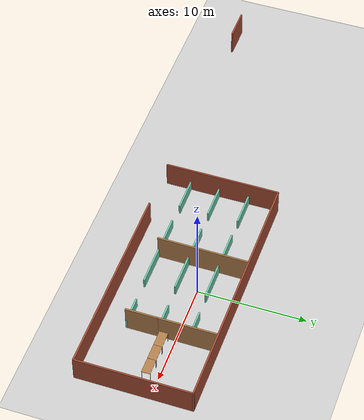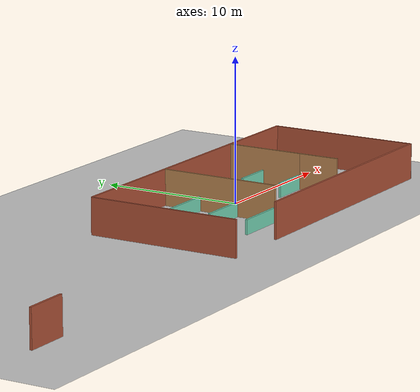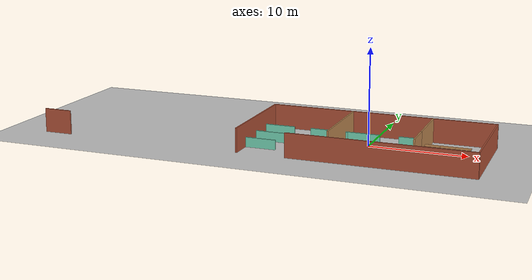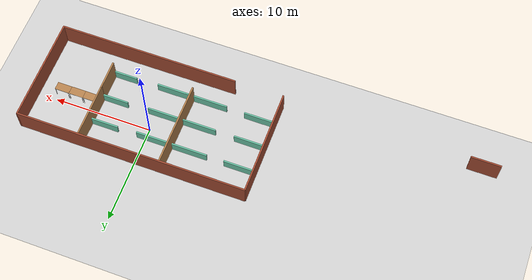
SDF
<sdf version="1.7">
 <world name="default">
  <plugin name="welcome_msg" filename="libhello.so"/>
  <light name="sun" type="directional">
   <pose>0 0 10 0 -0 0</pose>
   <diffuse>0.8 0.8 0.8 1</diffuse>
   <specular>0.2 0.2 0.2 1</specular>
   <attenuation>
    <range>1000</range>
    <constant>0.9</constant>
    <linear>0.01</linear>
    <quadratic>0.001</quadratic>
   </attenuation>
   <direction>-0.5 0.1 -0.9</direction>
   <spot><inner_angle>0</inner_angle><outer_angle>0</outer_angle><falloff>0</falloff></spot>
  </light>
  <model name="ground_plane">
   <static>1</static>
   <link name="link">
    <collision name="collision">
     <geometry><plane><normal>0 0 1</normal><size>100 100</size></plane></geometry>
     <surface><friction><ode><mu>100</mu><mu2>50</mu2></ode></friction></surface>
    </collision>
    <visual name="visual">
     <cast_shadows>0</cast_shadows>
     <geometry><plane><normal>0 0 1</normal><size>100 100</size></plane></geometry>
     <material>
      <script><uri>file://media/materials/scripts/gazebo.material</uri><name>Gazebo/Grey</name></script>
     </material>
    </visual>
   </link>
  </model>
  <gravity>0 0 -9.8</gravity>
  <magnetic_field>6e-06 2.3e-05 -4.2e-05</magnetic_field>
  <atmosphere type="adiabatic"/>
  <physics name="default_physics" default="0" type="ode">
   <max_step_size>0.001</max_step_size>
   <real_time_factor>1</real_time_factor>
   <real_time_update_rate>1000</real_time_update_rate>
  </physics>
  <scene><ambient>0.4 0.4 0.4 1</ambient><background>0.7 0.7 0.7 1</background><shadows>1</shadows></scene>
  <spherical_coordinates>
   <surface_model>EARTH_WGS84</surface_model>
   <latitude_deg>0</latitude_deg>
   <longitude_deg>0</longitude_deg>
   <elevation>0</elevation>
   <heading_deg>0</heading_deg>
  </spherical_coordinates>
  <model name="restaurants">
   <link name="Wall_17">
    <pose>5.31564 2.50892 0 0 -0 1.57072</pose>
    <visual name="Wall_17_Visual">
     <pose>0 0 1.25 0 -0 0</pose>
     <geometry><box><size>5.45915 0.15 2.5</size></box></geometry>
     <material>
      <script><uri>file://media/materials/scripts/gazebo.material</uri><name>Gazebo/Wood</name></script>
      <ambient>1 1 1 1</ambient>
      <shader type="pixel"/>
      <diffuse>1 1 1 1</diffuse>
      <specular>0.2 0.2 0.2 1</specular>
      <emissive>0 0 0 1</emissive>
     </material>
     <meta><layer>0</layer></meta>
    </visual>
    <collision name="Wall_17_Collision">
     <pose>0 0 1.25 0 -0 0</pose>
     <geometry><box><size>5.45915 0.15 2.5</size></box></geometry>
     <surface>
      <friction>
       <ode><mu>1</mu><mu2>1</mu2><fdir1>0 0 0</fdir1><slip1>0</slip1><slip2>0</slip2></ode>
       <torsional>
        <coefficient>1</coefficient>
        <patch_radius>0</patch_radius>
        <surface_radius>0</surface_radius>
        <use_patch_radius>1</use_patch_radius>
        <ode><slip>0</slip></ode>
       </torsional>
      </friction>
      <bounce><restitution_coefficient>0</restitution_coefficient><threshold>1e+06</threshold></bounce>
      <contact>
       <collide_without_contact>0</collide_without_contact>
       <collide_without_contact_bitmask>1</collide_without_contact_bitmask>
       <collide_bitmask>1</collide_bitmask>
       <ode>
        <soft_cfm>0</soft_cfm>
        <soft_erp>0.2</soft_erp>
        <kp>1e+13</kp>
        <kd>1</kd>
        <max_vel>0.01</max_vel>
        <min_depth>0</min_depth>
       </ode>
       <bullet>
        <split_impulse>1</split_impulse>
        <split_impulse_penetration_threshold>-0.01</split_impulse_penetration_threshold>
        <soft_cfm>0</soft_cfm>
        <soft_erp>0.2</soft_erp>
        <kp>1e+13</kp>
        <kd>1</kd>
       </bullet>
      </contact>
     </surface>
    </collision>
   </link>
   <link name="Wall_19">
    <pose>5.31545 -1.57066 0 0 0 -1.5708</pose>
    <visual name="Wall_19_Visual">
     <pose>0 0 1.25 0 -0 0</pose>
     <geometry><box><size>3 0.15 2.5</size></box></geometry>
     <material>
      <script><uri>file://media/materials/scripts/gazebo.material</uri><name>Gazebo/Wood</name></script>
      <ambient>1 1 1 1</ambient>
      <shader type="pixel"/>
      <diffuse>1 1 1 1</diffuse>
      <specular>0.2 0.2 0.2 1</specular>
      <emissive>0 0 0 1</emissive>
     </material>
     <meta><layer>0</layer></meta>
    </visual>
    <collision name="Wall_19_Collision">
     <pose>0 0 1.25 0 -0 0</pose>
     <geometry><box><size>3 0.15 2.5</size></box></geometry>
     <surface>
      <friction>
       <ode><mu>1</mu><mu2>1</mu2><fdir1>0 0 0</fdir1><slip1>0</slip1><slip2>0</slip2></ode>
       <torsional>
        <coefficient>1</coefficient>
        <patch_radius>0</patch_radius>
        <surface_radius>0</surface_radius>
        <use_patch_radius>1</use_patch_radius>
        <ode><slip>0</slip></ode>
       </torsional>
      </friction>
      <bounce><restitution_coefficient>0</restitution_coefficient><threshold>1e+06</threshold></bounce>
      <contact>
       <collide_without_contact>0</collide_without_contact>
       <collide_without_contact_bitmask>1</collide_without_contact_bitmask>
       <collide_bitmask>1</collide_bitmask>
       <ode>
        <soft_cfm>0</soft_cfm>
        <soft_erp>0.2</soft_erp>
        <kp>1e+13</kp>
        <kd>1</kd>
        <max_vel>0.01</max_vel>
        <min_depth>0</min_depth>
       </ode>
       <bullet>
        <split_impulse>1</split_impulse>
        <split_impulse_penetration_threshold>-0.01</split_impulse_penetration_threshold>
        <soft_cfm>0</soft_cfm>
        <soft_erp>0.2</soft_erp>
        <kp>1e+13</kp>
        <kd>1</kd>
       </bullet>
      </contact>
     </surface>
    </collision>
   </link>
   <link name="Wall_4">
    <pose>0.042334 5.32675 0 0 -0 0</pose>
    <visual name="Wall_4_Visual">
     <pose>0 0 1.25 0 -0 0</pose>
     <geometry><box><size>23.5 0.15 2.5</size></box></geometry>
     <material>
      <script><uri>file://media/materials/scripts/gazebo.material</uri><name>Gazebo/Bricks</name></script>
      <ambient>1 1 1 1</ambient>
      <shader type="pixel"/>
      <diffuse>1 1 1 1</diffuse>
      <specular>0.2 0.2 0.2 1</specular>
      <emissive>0 0 0 1</emissive>
     </material>
     <meta><layer>0</layer></meta>
    </visual>
    <collision name="Wall_4_Collision">
     <pose>0 0 1.25 0 -0 0</pose>
     <geometry><box><size>23.5 0.15 2.5</size></box></geometry>
     <surface>
      <friction>
       <ode><mu>1</mu><mu2>1</mu2><fdir1>0 0 0</fdir1><slip1>0</slip1><slip2>0</slip2></ode>
       <torsional>
        <coefficient>1</coefficient>
        <patch_radius>0</patch_radius>
        <surface_radius>0</surface_radius>
        <use_patch_radius>1</use_patch_radius>
        <ode><slip>0</slip></ode>
       </torsional>
      </friction>
      <bounce><restitution_coefficient>0</restitution_coefficient><threshold>1e+06</threshold></bounce>
      <contact>
       <collide_without_contact>0</collide_without_contact>
       <collide_without_contact_bitmask>1</collide_without_contact_bitmask>
       <collide_bitmask>1</collide_bitmask>
       <ode>
        <soft_cfm>0</soft_cfm>
        <soft_erp>0.2</soft_erp>
        <kp>1e+13</kp>
        <kd>1</kd>
        <max_vel>0.01</max_vel>
        <min_depth>0</min_depth>
       </ode>
       <bullet>
        <split_impulse>1</split_impulse>
        <split_impulse_penetration_threshold>-0.01</split_impulse_penetration_threshold>
        <soft_cfm>0</soft_cfm>
        <soft_erp>0.2</soft_erp>
        <kp>1e+13</kp>
        <kd>1</kd>
       </bullet>
      </contact>
     </surface>
    </collision>
   </link>
   <link name="Wall_48">
    <pose>-3.08222 1.07627 0 0 0 -1.57567</pose>
    <visual name="Wall_48_Visual">
     <pose>0 0 1.25 0 -0 0</pose>
     <geometry><box><size>8.5 0.15 2.5</size></box></geometry>
     <material>
      <script><uri>file://media/materials/scripts/gazebo.material</uri><name>Gazebo/Wood</name></script>
      <ambient>1 1 1 1</ambient>
      <shader type="pixel"/>
      <diffuse>1 1 1 1</diffuse>
      <specular>0.2 0.2 0.2 1</specular>
      <emissive>0 0 0 1</emissive>
     </material>
     <meta><layer>0</layer></meta>
    </visual>
    <collision name="Wall_48_Collision">
     <pose>0 0 1.25 0 -0 0</pose>
     <geometry><box><size>8.5 0.15 2.5</size></box></geometry>
     <surface>
      <friction>
       <ode><mu>1</mu><mu2>1</mu2><fdir1>0 0 0</fdir1><slip1>0</slip1><slip2>0</slip2></ode>
       <torsional>
        <coefficient>1</coefficient>
        <patch_radius>0</patch_radius>
        <surface_radius>0</surface_radius>
        <use_patch_radius>1</use_patch_radius>
        <ode><slip>0</slip></ode>
       </torsional>
      </friction>
      <bounce><restitution_coefficient>0</restitution_coefficient><threshold>1e+06</threshold></bounce>
      <contact>
       <collide_without_contact>0</collide_without_contact>
       <collide_without_contact_bitmask>1</collide_without_contact_bitmask>
       <collide_bitmask>1</collide_bitmask>
       <ode>
        <soft_cfm>0</soft_cfm>
        <soft_erp>0.2</soft_erp>
        <kp>1e+13</kp>
        <kd>1</kd>
        <max_vel>0.01</max_vel>
        <min_depth>0</min_depth>
       </ode>
       <bullet>
        <split_impulse>1</split_impulse>
        <split_impulse_penetration_threshold>-0.01</split_impulse_penetration_threshold>
        <soft_cfm>0</soft_cfm>
        <soft_erp>0.2</soft_erp>
        <kp>1e+13</kp>
        <kd>1</kd>
       </bullet>
      </contact>
     </surface>
    </collision>
   </link>
   <link name="Wall_6">
    <pose>11.7173 0.026751 0 0 0 -1.5708</pose>
    <visual name="Wall_6_Visual">
     <pose>0 0 1.25 0 -0 0</pose>
     <geometry><box><size>10.75 0.15 2.5</size></box></geometry>
     <material>
      <script><uri>file://media/materials/scripts/gazebo.material</uri><name>Gazebo/Bricks</name></script>
      <ambient>1 1 1 1</ambient>
      <shader type="pixel"/>
      <diffuse>1 1 1 1</diffuse>
      <specular>0.2 0.2 0.2 1</specular>
      <emissive>0 0 0 1</emissive>
     </material>
     <meta><layer>0</layer></meta>
    </visual>
    <collision name="Wall_6_Collision">
     <pose>0 0 1.25 0 -0 0</pose>
     <geometry><box><size>10.75 0.15 2.5</size></box></geometry>
     <surface>
      <friction>
       <ode><mu>1</mu><mu2>1</mu2><fdir1>0 0 0</fdir1><slip1>0</slip1><slip2>0</slip2></ode>
       <torsional>
        <coefficient>1</coefficient>
        <patch_radius>0</patch_radius>
        <surface_radius>0</surface_radius>
        <use_patch_radius>1</use_patch_radius>
        <ode><slip>0</slip></ode>
       </torsional>
      </friction>
      <bounce><restitution_coefficient>0</restitution_coefficient><threshold>1e+06</threshold></bounce>
      <contact>
       <collide_without_contact>0</collide_without_contact>
       <collide_without_contact_bitmask>1</collide_without_contact_bitmask>
       <collide_bitmask>1</collide_bitmask>
       <ode>
        <soft_cfm>0</soft_cfm>
        <soft_erp>0.2</soft_erp>
        <kp>1e+13</kp>
        <kd>1</kd>
        <max_vel>0.01</max_vel>
        <min_depth>0</min_depth>
       </ode>
       <bullet>
        <split_impulse>1</split_impulse>
        <split_impulse_penetration_threshold>-0.01</split_impulse_penetration_threshold>
        <soft_cfm>0</soft_cfm>
        <soft_erp>0.2</soft_erp>
        <kp>1e+13</kp>
        <kd>1</kd>
       </bullet>
      </contact>
     </surface>
    </collision>
   </link>
   <link name="Wall_66">
    <pose>-10.1176 2.54034 0 0 -0 0</pose>
    <visual name="Wall_66_Visual">
     <pose>0 0 0.5 0 -0 0</pose>
     <geometry><box><size>3.25 0.15 1</size></box></geometry>
     <material>
      <script><uri>file://media/materials/scripts/gazebo.material</uri><name>Gazebo/Grey</name></script>
      <ambient>0.435294 0.796078 0.67451 1</ambient>
      <shader type="pixel"/>
      <diffuse>0.7 0.7 0.7 1</diffuse>
      <specular>0.01 0.01 0.01 1</specular>
      <emissive>0 0 0 1</emissive>
     </material>
     <meta><layer>0</layer></meta>
    </visual>
    <collision name="Wall_66_Collision">
     <pose>0 0 0.5 0 -0 0</pose>
     <geometry><box><size>3.25 0.15 1</size></box></geometry>
     <surface>
      <friction>
       <ode><mu>1</mu><mu2>1</mu2><fdir1>0 0 0</fdir1><slip1>0</slip1><slip2>0</slip2></ode>
       <torsional>
        <coefficient>1</coefficient>
        <patch_radius>0</patch_radius>
        <surface_radius>0</surface_radius>
        <use_patch_radius>1</use_patch_radius>
        <ode><slip>0</slip></ode>
       </torsional>
      </friction>
      <bounce><restitution_coefficient>0</restitution_coefficient><threshold>1e+06</threshold></bounce>
      <contact>
       <collide_without_contact>0</collide_without_contact>
       <collide_without_contact_bitmask>1</collide_without_contact_bitmask>
       <collide_bitmask>1</collide_bitmask>
       <ode>
        <soft_cfm>0</soft_cfm>
        <soft_erp>0.2</soft_erp>
        <kp>1e+13</kp>
        <kd>1</kd>
        <max_vel>0.01</max_vel>
        <min_depth>0</min_depth>
       </ode>
       <bullet>
        <split_impulse>1</split_impulse>
        <split_impulse_penetration_threshold>-0.01</split_impulse_penetration_threshold>
        <soft_cfm>0</soft_cfm>
        <soft_erp>0.2</soft_erp>
        <kp>1e+13</kp>
        <kd>1</kd>
       </bullet>
      </contact>
     </surface>
    </collision>
   </link>
   <link name="Wall_69">
    <pose>-10.1046 -0.300662 0 0 -0 0</pose>
    <visual name="Wall_69_Visual">
     <pose>0 0 0.5 0 -0 0</pose>
     <geometry><box><size>3.25 0.15 1</size></box></geometry>
     <material>
      <script><uri>file://media/materials/scripts/gazebo.material</uri><name>Gazebo/Grey</name></script>
      <ambient>0.435294 0.796078 0.67451 1</ambient>
      <shader type="pixel"/>
      <diffuse>0.7 0.7 0.7 1</diffuse>
      <specular>0.01 0.01 0.01 1</specular>
      <emissive>0 0 0 1</emissive>
     </material>
     <meta><layer>0</layer></meta>
    </visual>
    <collision name="Wall_69_Collision">
     <pose>0 0 0.5 0 -0 0</pose>
     <geometry><box><size>3.25 0.15 1</size></box></geometry>
     <surface>
      <friction>
       <ode><mu>1</mu><mu2>1</mu2><fdir1>0 0 0</fdir1><slip1>0</slip1><slip2>0</slip2></ode>
       <torsional>
        <coefficient>1</coefficient>
        <patch_radius>0</patch_radius>
        <surface_radius>0</surface_radius>
        <use_patch_radius>1</use_patch_radius>
        <ode><slip>0</slip></ode>
       </torsional>
      </friction>
      <bounce><restitution_coefficient>0</restitution_coefficient><threshold>1e+06</threshold></bounce>
      <contact>
       <collide_without_contact>0</collide_without_contact>
       <collide_without_contact_bitmask>1</collide_without_contact_bitmask>
       <collide_bitmask>1</collide_bitmask>
       <ode>
        <soft_cfm>0</soft_cfm>
        <soft_erp>0.2</soft_erp>
        <kp>1e+13</kp>
        <kd>1</kd>
        <max_vel>0.01</max_vel>
        <min_depth>0</min_depth>
       </ode>
       <bullet>
        <split_impulse>1</split_impulse>
        <split_impulse_penetration_threshold>-0.01</split_impulse_penetration_threshold>
        <soft_cfm>0</soft_cfm>
        <soft_erp>0.2</soft_erp>
        <kp>1e+13</kp>
        <kd>1</kd>
       </bullet>
      </contact>
     </surface>
    </collision>
   </link>
   <link name="Wall_7_left">
    <pose>-30 -5.27325 0 0 -0 3.14159</pose>
    <visual name="Wall_7_left_Visual">
     <pose>2 0 1.25 0 -0 0</pose>
     <geometry><box><size>3 0.15 2.5</size></box></geometry>
     <material>
      <script><uri>file://media/materials/scripts/gazebo.material</uri><name>Gazebo/Bricks</name></script>
      <ambient>1 1 1 1</ambient>
      <diffuse>1 1 1 1</diffuse>
      <specular>0.2 0.2 0.2 1</specular>
      <emissive>0 0 0 1</emissive>
     </material>
    </visual>
    <collision name="Wall_7_left_Collision">
     <pose>2 0 1.25 0 -0 0</pose>
     <geometry><box><size>3 0.15 2.5</size></box></geometry>
    </collision>
   </link>
   <link name="Wall_7_right">
    <pose>6.8 -5.27325 0 0 -0 3.14159</pose>
    <visual name="Wall_7_right_Visual">
     <pose>4.3 0 1.25 0 -0 0</pose>
     <geometry><box><size>18.5 0.15 2.5</size></box></geometry>
     <material>
      <script><uri>file://media/materials/scripts/gazebo.material</uri><name>Gazebo/Bricks</name></script>
      <ambient>1 1 1 1</ambient>
      <diffuse>1 1 1 1</diffuse>
      <specular>0.2 0.2 0.2 1</specular>
      <emissive>0 0 0 1</emissive>
     </material>
    </visual>
    <collision name="Wall_7_right_Collision">
     <pose>4.3 0 1.25 0 -0 0</pose>
     <geometry><box><size>18.5 0.15 2.5</size></box></geometry>
    </collision>
   </link>
   <link name="Wall_71">
    <pose>-10.1406 -3.04466 0 0 -0 0</pose>
    <visual name="Wall_71_Visual">
     <pose>0 0 0.5 0 -0 0</pose>
     <geometry><box><size>3.25 0.15 1</size></box></geometry>
     <material>
      <script><uri>file://media/materials/scripts/gazebo.material</uri><name>Gazebo/Grey</name></script>
      <ambient>0.435294 0.796078 0.67451 1</ambient>
      <shader type="pixel"/>
      <diffuse>0.7 0.7 0.7 1</diffuse>
      <specular>0.01 0.01 0.01 1</specular>
      <emissive>0 0 0 1</emissive>
     </material>
     <meta><layer>0</layer></meta>
    </visual>
    <collision name="Wall_71_Collision">
     <pose>0 0 0.5 0 -0 0</pose>
     <geometry><box><size>3.25 0.15 1</size></box></geometry>
     <surface>
      <friction>
       <ode><mu>1</mu><mu2>1</mu2><fdir1>0 0 0</fdir1><slip1>0</slip1><slip2>0</slip2></ode>
       <torsional>
        <coefficient>1</coefficient>
        <patch_radius>0</patch_radius>
        <surface_radius>0</surface_radius>
        <use_patch_radius>1</use_patch_radius>
        <ode><slip>0</slip></ode>
       </torsional>
      </friction>
      <bounce><restitution_coefficient>0</restitution_coefficient><threshold>1e+06</threshold></bounce>
      <contact>
       <collide_without_contact>0</collide_without_contact>
       <collide_without_contact_bitmask>1</collide_without_contact_bitmask>
       <collide_bitmask>1</collide_bitmask>
       <ode>
        <soft_cfm>0</soft_cfm>
        <soft_erp>0.2</soft_erp>
        <kp>1e+13</kp>
        <kd>1</kd>
        <max_vel>0.01</max_vel>
        <min_depth>0</min_depth>
       </ode>
       <bullet>
        <split_impulse>1</split_impulse>
        <split_impulse_penetration_threshold>-0.01</split_impulse_penetration_threshold>
        <soft_cfm>0</soft_cfm>
        <soft_erp>0.2</soft_erp>
        <kp>1e+13</kp>
        <kd>1</kd>
       </bullet>
      </contact>
     </surface>
    </collision>
   </link>
   <link name="Wall_73">
    <pose>-4.76086 2.55834 0 0 -0 0</pose>
    <visual name="Wall_73_Visual">
     <pose>0 0 0.5 0 -0 0</pose>
     <geometry><box><size>3.98261 0.15 1</size></box></geometry>
     <material>
      <script><uri>file://media/materials/scripts/gazebo.material</uri><name>Gazebo/Grey</name></script>
      <ambient>0.435294 0.796078 0.67451 1</ambient>
      <shader type="pixel"/>
      <diffuse>0.7 0.7 0.7 1</diffuse>
      <specular>0.01 0.01 0.01 1</specular>
      <emissive>0 0 0 1</emissive>
     </material>
     <meta><layer>0</layer></meta>
    </visual>
    <collision name="Wall_73_Collision">
     <pose>0 0 0.5 0 -0 0</pose>
     <geometry><box><size>3.98261 0.15 1</size></box></geometry>
     <surface>
      <friction>
       <ode><mu>1</mu><mu2>1</mu2><fdir1>0 0 0</fdir1><slip1>0</slip1><slip2>0</slip2></ode>
       <torsional>
        <coefficient>1</coefficient>
        <patch_radius>0</patch_radius>
        <surface_radius>0</surface_radius>
        <use_patch_radius>1</use_patch_radius>
        <ode><slip>0</slip></ode>
       </torsional>
      </friction>
      <bounce><restitution_coefficient>0</restitution_coefficient><threshold>1e+06</threshold></bounce>
      <contact>
       <collide_without_contact>0</collide_without_contact>
       <collide_without_contact_bitmask>1</collide_without_contact_bitmask>
       <collide_bitmask>1</collide_bitmask>
       <ode>
        <soft_cfm>0</soft_cfm>
        <soft_erp>0.2</soft_erp>
        <kp>1e+13</kp>
        <kd>1</kd>
        <max_vel>0.01</max_vel>
        <min_depth>0</min_depth>
       </ode>
       <bullet>
        <split_impulse>1</split_impulse>
        <split_impulse_penetration_threshold>-0.01</split_impulse_penetration_threshold>
        <soft_cfm>0</soft_cfm>
        <soft_erp>0.2</soft_erp>
        <kp>1e+13</kp>
        <kd>1</kd>
       </bullet>
      </contact>
     </surface>
    </collision>
   </link>
   <link name="Wall_75">
    <pose>-4.69255 -0.273662 0 0 -0 0</pose>
    <visual name="Wall_75_Visual">
     <pose>0 0 0.5 0 -0 0</pose>
     <geometry><box><size>3.75 0.15 1</size></box></geometry>
     <material>
      <script><uri>file://media/materials/scripts/gazebo.material</uri><name>Gazebo/Grey</name></script>
      <ambient>0.435294 0.796078 0.67451 1</ambient>
      <shader type="pixel"/>
      <diffuse>0.7 0.7 0.7 1</diffuse>
      <specular>0.01 0.01 0.01 1</specular>
      <emissive>0 0 0 1</emissive>
     </material>
     <meta><layer>0</layer></meta>
    </visual>
    <collision name="Wall_75_Collision">
     <pose>0 0 0.5 0 -0 0</pose>
     <geometry><box><size>3.75 0.15 1</size></box></geometry>
     <surface>
      <friction>
       <ode><mu>1</mu><mu2>1</mu2><fdir1>0 0 0</fdir1><slip1>0</slip1><slip2>0</slip2></ode>
       <torsional>
        <coefficient>1</coefficient>
        <patch_radius>0</patch_radius>
        <surface_radius>0</surface_radius>
        <use_patch_radius>1</use_patch_radius>
        <ode><slip>0</slip></ode>
       </torsional>
      </friction>
      <bounce><restitution_coefficient>0</restitution_coefficient><threshold>1e+06</threshold></bounce>
      <contact>
       <collide_without_contact>0</collide_without_contact>
       <collide_without_contact_bitmask>1</collide_without_contact_bitmask>
       <collide_bitmask>1</collide_bitmask>
       <ode>
        <soft_cfm>0</soft_cfm>
        <soft_erp>0.2</soft_erp>
        <kp>1e+13</kp>
        <kd>1</kd>
        <max_vel>0.01</max_vel>
        <min_depth>0</min_depth>
       </ode>
       <bullet>
        <split_impulse>1</split_impulse>
        <split_impulse_penetration_threshold>-0.01</split_impulse_penetration_threshold>
        <soft_cfm>0</soft_cfm>
        <soft_erp>0.2</soft_erp>
        <kp>1e+13</kp>
        <kd>1</kd>
       </bullet>
      </contact>
     </surface>
    </collision>
   </link>
   <link name="Wall_79">
    <pose>-4.84555 -3.09866 0 0 -0 3.14159</pose>
    <visual name="Wall_79_Visual">
     <pose>0 0 0.5 0 -0 0</pose>
     <geometry><box><size>3.6359 0.15 1</size></box></geometry>
     <material>
      <script><uri>file://media/materials/scripts/gazebo.material</uri><name>Gazebo/Grey</name></script>
      <ambient>0.435294 0.796078 0.67451 1</ambient>
      <shader type="pixel"/>
      <diffuse>0.7 0.7 0.7 1</diffuse>
      <specular>0.01 0.01 0.01 1</specular>
      <emissive>0 0 0 1</emissive>
     </material>
     <meta><layer>0</layer></meta>
    </visual>
    <collision name="Wall_79_Collision">
     <pose>0 0 0.5 0 -0 0</pose>
     <geometry><box><size>3.6359 0.15 1</size></box></geometry>
     <surface>
      <friction>
       <ode><mu>1</mu><mu2>1</mu2><fdir1>0 0 0</fdir1><slip1>0</slip1><slip2>0</slip2></ode>
       <torsional>
        <coefficient>1</coefficient>
        <patch_radius>0</patch_radius>
        <surface_radius>0</surface_radius>
        <use_patch_radius>1</use_patch_radius>
        <ode><slip>0</slip></ode>
       </torsional>
      </friction>
      <bounce><restitution_coefficient>0</restitution_coefficient><threshold>1e+06</threshold></bounce>
      <contact>
       <collide_without_contact>0</collide_without_contact>
       <collide_without_contact_bitmask>1</collide_without_contact_bitmask>
       <collide_bitmask>1</collide_bitmask>
       <ode>
        <soft_cfm>0</soft_cfm>
        <soft_erp>0.2</soft_erp>
        <kp>1e+13</kp>
        <kd>1</kd>
        <max_vel>0.01</max_vel>
        <min_depth>0</min_depth>
       </ode>
       <bullet>
        <split_impulse>1</split_impulse>
        <split_impulse_penetration_threshold>-0.01</split_impulse_penetration_threshold>
        <soft_cfm>0</soft_cfm>
        <soft_erp>0.2</soft_erp>
        <kp>1e+13</kp>
        <kd>1</kd>
       </bullet>
      </contact>
     </surface>
    </collision>
   </link>
   <link name="Wall_8">
    <pose>-11.7173 -0.026751 0 0 -0 1.5708</pose>
    <visual name="Wall_8_Visual">
     <pose>0 0 1.25 0 -0 0</pose>
     <geometry><box><size>10.75 0.15 2.5</size></box></geometry>
     <material>
      <script><uri>file://media/materials/scripts/gazebo.material</uri><name>Gazebo/Bricks</name></script>
      <ambient>1 1 1 1</ambient>
      <shader type="pixel"/>
      <diffuse>1 1 1 1</diffuse>
      <specular>0.2 0.2 0.2 1</specular>
      <emissive>0 0 0 1</emissive>
     </material>
     <meta><layer>0</layer></meta>
    </visual>
    <collision name="Wall_8_Collision">
     <pose>0 0 1.25 0 -0 0</pose>
     <geometry><box><size>10.75 0.15 2.5</size></box></geometry>
     <surface>
      <friction>
       <ode><mu>1</mu><mu2>1</mu2><fdir1>0 0 0</fdir1><slip1>0</slip1><slip2>0</slip2></ode>
       <torsional>
        <coefficient>1</coefficient>
        <patch_radius>0</patch_radius>
        <surface_radius>0</surface_radius>
        <use_patch_radius>1</use_patch_radius>
        <ode><slip>0</slip></ode>
       </torsional>
      </friction>
      <bounce><restitution_coefficient>0</restitution_coefficient><threshold>1e+06</threshold></bounce>
      <contact>
       <collide_without_contact>0</collide_without_contact>
       <collide_without_contact_bitmask>1</collide_without_contact_bitmask>
       <collide_bitmask>1</collide_bitmask>
       <ode>
        <soft_cfm>0</soft_cfm>
        <soft_erp>0.2</soft_erp>
        <kp>1e+13</kp>
        <kd>1</kd>
        <max_vel>0.01</max_vel>
        <min_depth>0</min_depth>
       </ode>
       <bullet>
        <split_impulse>1</split_impulse>
        <split_impulse_penetration_threshold>-0.01</split_impulse_penetration_threshold>
        <soft_cfm>0</soft_cfm>
        <soft_erp>0.2</soft_erp>
        <kp>1e+13</kp>
        <kd>1</kd>
       </bullet>
      </contact>
     </surface>
    </collision>
   </link>
   <link name="Wall_81">
    <pose>-1.16955 2.55834 0 0 -0 0</pose>
    <visual name="Wall_81_Visual">
     <pose>0 0 0.5 0 -0 0</pose>
     <geometry><box><size>3.5 0.15 1</size></box></geometry>
     <material>
      <script><uri>file://media/materials/scripts/gazebo.material</uri><name>Gazebo/Grey</name></script>
      <ambient>0.435294 0.796078 0.67451 1</ambient>
      <shader type="pixel"/>
      <diffuse>0.7 0.7 0.7 1</diffuse>
      <specular>0.01 0.01 0.01 1</specular>
      <emissive>0 0 0 1</emissive>
     </material>
     <meta><layer>0</layer></meta>
    </visual>
    <collision name="Wall_81_Collision">
     <pose>0 0 0.5 0 -0 0</pose>
     <geometry><box><size>3.5 0.15 1</size></box></geometry>
     <surface>
      <friction>
       <ode><mu>1</mu><mu2>1</mu2><fdir1>0 0 0</fdir1><slip1>0</slip1><slip2>0</slip2></ode>
       <torsional>
        <coefficient>1</coefficient>
        <patch_radius>0</patch_radius>
        <surface_radius>0</surface_radius>
        <use_patch_radius>1</use_patch_radius>
        <ode><slip>0</slip></ode>
       </torsional>
      </friction>
      <bounce><restitution_coefficient>0</restitution_coefficient><threshold>1e+06</threshold></bounce>
      <contact>
       <collide_without_contact>0</collide_without_contact>
       <collide_without_contact_bitmask>1</collide_without_contact_bitmask>
       <collide_bitmask>1</collide_bitmask>
       <ode>
        <soft_cfm>0</soft_cfm>
        <soft_erp>0.2</soft_erp>
        <kp>1e+13</kp>
        <kd>1</kd>
        <max_vel>0.01</max_vel>
        <min_depth>0</min_depth>
       </ode>
       <bullet>
        <split_impulse>1</split_impulse>
        <split_impulse_penetration_threshold>-0.01</split_impulse_penetration_threshold>
        <soft_cfm>0</soft_cfm>
        <soft_erp>0.2</soft_erp>
        <kp>1e+13</kp>
        <kd>1</kd>
       </bullet>
      </contact>
     </surface>
    </collision>
   </link>
   <link name="Wall_83">
    <pose>-1.21755 -0.273662 0 0 -0 0</pose>
    <visual name="Wall_83_Visual">
     <pose>0 0 0.5 0 -0 0</pose>
     <geometry><box><size>3.5 0.15 1</size></box></geometry>
     <material>
      <script><uri>file://media/materials/scripts/gazebo.material</uri><name>Gazebo/Grey</name></script>
      <ambient>0.435294 0.796078 0.67451 1</ambient>
      <shader type="pixel"/>
      <diffuse>0.7 0.7 0.7 1</diffuse>
      <specular>0.01 0.01 0.01 1</specular>
      <emissive>0 0 0 1</emissive>
     </material>
     <meta><layer>0</layer></meta>
    </visual>
    <collision name="Wall_83_Collision">
     <pose>0 0 0.5 0 -0 0</pose>
     <geometry><box><size>3.5 0.15 1</size></box></geometry>
     <surface>
      <friction>
       <ode><mu>1</mu><mu2>1</mu2><fdir1>0 0 0</fdir1><slip1>0</slip1><slip2>0</slip2></ode>
       <torsional>
        <coefficient>1</coefficient>
        <patch_radius>0</patch_radius>
        <surface_radius>0</surface_radius>
        <use_patch_radius>1</use_patch_radius>
        <ode><slip>0</slip></ode>
       </torsional>
      </friction>
      <bounce><restitution_coefficient>0</restitution_coefficient><threshold>1e+06</threshold></bounce>
      <contact>
       <collide_without_contact>0</collide_without_contact>
       <collide_without_contact_bitmask>1</collide_without_contact_bitmask>
       <collide_bitmask>1</collide_bitmask>
       <ode>
        <soft_cfm>0</soft_cfm>
        <soft_erp>0.2</soft_erp>
        <kp>1e+13</kp>
        <kd>1</kd>
        <max_vel>0.01</max_vel>
        <min_depth>0</min_depth>
       </ode>
       <bullet>
        <split_impulse>1</split_impulse>
        <split_impulse_penetration_threshold>-0.01</split_impulse_penetration_threshold>
        <soft_cfm>0</soft_cfm>
        <soft_erp>0.2</soft_erp>
        <kp>1e+13</kp>
        <kd>1</kd>
       </bullet>
      </contact>
     </surface>
    </collision>
   </link>
   <link name="Wall_85">
    <pose>-1.24555 -3.09866 0 0 -0 0</pose>
    <visual name="Wall_85_Visual">
     <pose>0 0 0.5 0 -0 0</pose>
     <geometry><box><size>3.8641 0.15 1</size></box></geometry>
     <material>
      <script><uri>file://media/materials/scripts/gazebo.material</uri><name>Gazebo/Grey</name></script>
      <ambient>0.435294 0.796078 0.67451 1</ambient>
      <shader type="pixel"/>
      <diffuse>0.7 0.7 0.7 1</diffuse>
      <specular>0.01 0.01 0.01 1</specular>
      <emissive>0 0 0 1</emissive>
     </material>
     <meta><layer>0</layer></meta>
    </visual>
    <collision name="Wall_85_Collision">
     <pose>0 0 0.5 0 -0 0</pose>
     <geometry><box><size>3.8641 0.15 1</size></box></geometry>
     <surface>
      <friction>
       <ode><mu>1</mu><mu2>1</mu2><fdir1>0 0 0</fdir1><slip1>0</slip1><slip2>0</slip2></ode>
       <torsional>
        <coefficient>1</coefficient>
        <patch_radius>0</patch_radius>
        <surface_radius>0</surface_radius>
        <use_patch_radius>1</use_patch_radius>
        <ode><slip>0</slip></ode>
       </torsional>
      </friction>
      <bounce><restitution_coefficient>0</restitution_coefficient><threshold>1e+06</threshold></bounce>
      <contact>
       <collide_without_contact>0</collide_without_contact>
       <collide_without_contact_bitmask>1</collide_without_contact_bitmask>
       <collide_bitmask>1</collide_bitmask>
       <ode>
        <soft_cfm>0</soft_cfm>
        <soft_erp>0.2</soft_erp>
        <kp>1e+13</kp>
        <kd>1</kd>
        <max_vel>0.01</max_vel>
        <min_depth>0</min_depth>
       </ode>
       <bullet>
        <split_impulse>1</split_impulse>
        <split_impulse_penetration_threshold>-0.01</split_impulse_penetration_threshold>
        <soft_cfm>0</soft_cfm>
        <soft_erp>0.2</soft_erp>
        <kp>1e+13</kp>
        <kd>1</kd>
       </bullet>
      </contact>
     </surface>
    </collision>
   </link>
   <link name="Wall_87">
    <pose>3.86945 2.67934 0 0 -0 0</pose>
    <visual name="Wall_87_Visual">
     <pose>0 0 0.5 0 -0 0</pose>
     <geometry><box><size>2.75 0.15 1</size></box></geometry>
     <material>
      <script><uri>file://media/materials/scripts/gazebo.material</uri><name>Gazebo/Grey</name></script>
      <ambient>0.435294 0.796078 0.67451 1</ambient>
      <shader type="pixel"/>
      <diffuse>0.7 0.7 0.7 1</diffuse>
      <specular>0.01 0.01 0.01 1</specular>
      <emissive>0 0 0 1</emissive>
     </material>
     <meta><layer>0</layer></meta>
    </visual>
    <collision name="Wall_87_Collision">
     <pose>0 0 0.5 0 -0 0</pose>
     <geometry><box><size>2.75 0.15 1</size></box></geometry>
     <surface>
      <friction>
       <ode><mu>1</mu><mu2>1</mu2><fdir1>0 0 0</fdir1><slip1>0</slip1><slip2>0</slip2></ode>
       <torsional>
        <coefficient>1</coefficient>
        <patch_radius>0</patch_radius>
        <surface_radius>0</surface_radius>
        <use_patch_radius>1</use_patch_radius>
        <ode><slip>0</slip></ode>
       </torsional>
      </friction>
      <bounce><restitution_coefficient>0</restitution_coefficient><threshold>1e+06</threshold></bounce>
      <contact>
       <collide_without_contact>0</collide_without_contact>
       <collide_without_contact_bitmask>1</collide_without_contact_bitmask>
       <collide_bitmask>1</collide_bitmask>
       <ode>
        <soft_cfm>0</soft_cfm>
        <soft_erp>0.2</soft_erp>
        <kp>1e+13</kp>
        <kd>1</kd>
        <max_vel>0.01</max_vel>
        <min_depth>0</min_depth>
       </ode>
       <bullet>
        <split_impulse>1</split_impulse>
        <split_impulse_penetration_threshold>-0.01</split_impulse_penetration_threshold>
        <soft_cfm>0</soft_cfm>
        <soft_erp>0.2</soft_erp>
        <kp>1e+13</kp>
        <kd>1</kd>
       </bullet>
      </contact>
     </surface>
    </collision>
   </link>
   <link name="Wall_92">
    <pose>4.01545 -0.145661 0 0 -0 3.14159</pose>
    <visual name="Wall_92_Visual">
     <pose>0 0 0.5 0 -0 0</pose>
     <geometry><box><size>2.75 0.15 1</size></box></geometry>
     <material>
      <script><uri>file://media/materials/scripts/gazebo.material</uri><name>Gazebo/Grey</name></script>
      <ambient>0.435294 0.796078 0.67451 1</ambient>
      <shader type="pixel"/>
      <diffuse>0.7 0.7 0.7 1</diffuse>
      <specular>0.01 0.01 0.01 1</specular>
      <emissive>0 0 0 1</emissive>
     </material>
     <meta><layer>0</layer></meta>
    </visual>
    <collision name="Wall_92_Collision">
     <pose>0 0 0.5 0 -0 0</pose>
     <geometry><box><size>2.75 0.15 1</size></box></geometry>
     <surface>
      <friction>
       <ode><mu>1</mu><mu2>1</mu2><fdir1>0 0 0</fdir1><slip1>0</slip1><slip2>0</slip2></ode>
       <torsional>
        <coefficient>1</coefficient>
        <patch_radius>0</patch_radius>
        <surface_radius>0</surface_radius>
        <use_patch_radius>1</use_patch_radius>
        <ode><slip>0</slip></ode>
       </torsional>
      </friction>
      <bounce><restitution_coefficient>0</restitution_coefficient><threshold>1e+06</threshold></bounce>
      <contact>
       <collide_without_contact>0</collide_without_contact>
       <collide_without_contact_bitmask>1</collide_without_contact_bitmask>
       <collide_bitmask>1</collide_bitmask>
       <ode>
        <soft_cfm>0</soft_cfm>
        <soft_erp>0.2</soft_erp>
        <kp>1e+13</kp>
        <kd>1</kd>
        <max_vel>0.01</max_vel>
        <min_depth>0</min_depth>
       </ode>
       <bullet>
        <split_impulse>1</split_impulse>
        <split_impulse_penetration_threshold>-0.01</split_impulse_penetration_threshold>
        <soft_cfm>0</soft_cfm>
        <soft_erp>0.2</soft_erp>
        <kp>1e+13</kp>
        <kd>1</kd>
       </bullet>
      </contact>
     </surface>
    </collision>
   </link>
   <link name="Wall_94">
    <pose>4.14045 -2.99566 0 0 -0 3.14159</pose>
    <visual name="Wall_94_Visual">
     <pose>0 0 0.5 0 -0 0</pose>
     <geometry><box><size>2.5 0.15 1</size></box></geometry>
     <material>
      <script><uri>file://media/materials/scripts/gazebo.material</uri><name>Gazebo/Grey</name></script>
      <ambient>0.435294 0.796078 0.67451 1</ambient>
      <shader type="pixel"/>
      <diffuse>0.7 0.7 0.7 1</diffuse>
      <specular>0.01 0.01 0.01 1</specular>
      <emissive>0 0 0 1</emissive>
     </material>
     <meta><layer>0</layer></meta>
    </visual>
    <collision name="Wall_94_Collision">
     <pose>0 0 0.5 0 -0 0</pose>
     <geometry><box><size>2.5 0.15 1</size></box></geometry>
     <surface>
      <friction>
       <ode><mu>1</mu><mu2>1</mu2><fdir1>0 0 0</fdir1><slip1>0</slip1><slip2>0</slip2></ode>
       <torsional>
        <coefficient>1</coefficient>
        <patch_radius>0</patch_radius>
        <surface_radius>0</surface_radius>
        <use_patch_radius>1</use_patch_radius>
        <ode><slip>0</slip></ode>
       </torsional>
      </friction>
      <bounce><restitution_coefficient>0</restitution_coefficient><threshold>1e+06</threshold></bounce>
      <contact>
       <collide_without_contact>0</collide_without_contact>
       <collide_without_contact_bitmask>1</collide_without_contact_bitmask>
       <collide_bitmask>1</collide_bitmask>
       <ode>
        <soft_cfm>0</soft_cfm>
        <soft_erp>0.2</soft_erp>
        <kp>1e+13</kp>
        <kd>1</kd>
        <max_vel>0.01</max_vel>
        <min_depth>0</min_depth>
       </ode>
       <bullet>
        <split_impulse>1</split_impulse>
        <split_impulse_penetration_threshold>-0.01</split_impulse_penetration_threshold>
        <soft_cfm>0</soft_cfm>
        <soft_erp>0.2</soft_erp>
        <kp>1e+13</kp>
        <kd>1</kd>
       </bullet>
      </contact>
     </surface>
    </collision>
   </link>
   <static>1</static>
   <pose>0.32728 -1.509 0 0 -0 0</pose>
  </model>
  <model name="table">
   <static>1</static>
   <link name="link">
    <collision name="surface">
     <pose>0 0 1 0 -0 0</pose>
     <geometry><box><size>1.5 0.8 0.03</size></box></geometry>
     <surface><friction><ode><mu>0.6</mu><mu2>0.6</mu2></ode></friction></surface>
    </collision>
    <visual name="visual1">
     <pose>0 0 1 0 -0 0</pose>
     <geometry><box><size>1.5 0.8 0.03</size></box></geometry>
     <material>
      <script><uri>file://media/materials/scripts/gazebo.material</uri><name>Gazebo/Wood</name></script>
     </material>
    </visual>
    <collision name="front_left_leg">
     <pose>0.68 0.38 0.5 0 -0 0</pose>
     <geometry><cylinder><radius>0.02</radius><length>1</length></cylinder></geometry>
    </collision>
    <visual name="front_left_leg">
     <pose>0.68 0.38 0.5 0 -0 0</pose>
     <geometry><cylinder><radius>0.02</radius><length>1</length></cylinder></geometry>
     <material>
      <script><uri>file://media/materials/scripts/gazebo.material</uri><name>Gazebo/Grey</name></script>
     </material>
    </visual>
    <collision name="front_right_leg">
     <pose>0.68 -0.38 0.5 0 -0 0</pose>
     <geometry><cylinder><radius>0.02</radius><length>1</length></cylinder></geometry>
    </collision>
    <visual name="front_right_leg">
     <pose>0.68 -0.38 0.5 0 -0 0</pose>
     <geometry><cylinder><radius>0.02</radius><length>1</length></cylinder></geometry>
     <material>
      <script><uri>file://media/materials/scripts/gazebo.material</uri><name>Gazebo/Grey</name></script>
     </material>
    </visual>
    <collision name="back_right_leg">
     <pose>-0.68 -0.38 0.5 0 -0 0</pose>
     <geometry><cylinder><radius>0.02</radius><length>1</length></cylinder></geometry>
    </collision>
    <visual name="back_right_leg">
     <pose>-0.68 -0.38 0.5 0 -0 0</pose>
     <geometry><cylinder><radius>0.02</radius><length>1</length></cylinder></geometry>
     <material>
      <script><uri>file://media/materials/scripts/gazebo.material</uri><name>Gazebo/Grey</name></script>
     </material>
    </visual>
    <collision name="back_left_leg">
     <pose>-0.68 0.38 0.5 0 -0 0</pose>
     <geometry><cylinder><radius>0.02</radius><length>1</length></cylinder></geometry>
    </collision>
    <visual name="back_left_leg">
     <pose>-0.68 0.38 0.5 0 -0 0</pose>
     <geometry><cylinder><radius>0.02</radius><length>1</length></cylinder></geometry>
     <material>
      <script><uri>file://media/materials/scripts/gazebo.material</uri><name>Gazebo/Grey</name></script>
     </material>
    </visual>
   </link>
   <pose>6.63312 -1.00376 0 0 -0 0</pose>
  </model>
  <model name="table_0">
   <static>1</static>
   <link name="link">
    <collision name="surface">
     <pose>0 0 1 0 -0 0</pose>
     <geometry><box><size>1.5 0.8 0.03</size></box></geometry>
     <surface><friction><ode><mu>0.6</mu><mu2>0.6</mu2></ode></friction></surface>
    </collision>
    <visual name="visual1">
     <pose>0 0 1 0 -0 0</pose>
     <geometry><box><size>1.5 0.8 0.03</size></box></geometry>
     <material>
      <script><uri>file://media/materials/scripts/gazebo.material</uri><name>Gazebo/Wood</name></script>
     </material>
    </visual>
    <collision name="front_left_leg">
     <pose>0.68 0.38 0.5 0 -0 0</pose>
     <geometry><cylinder><radius>0.02</radius><length>1</length></cylinder></geometry>
    </collision>
    <visual name="front_left_leg">
     <pose>0.68 0.38 0.5 0 -0 0</pose>
     <geometry><cylinder><radius>0.02</radius><length>1</length></cylinder></geometry>
     <material>
      <script><uri>file://media/materials/scripts/gazebo.material</uri><name>Gazebo/Grey</name></script>
     </material>
    </visual>
    <collision name="front_right_leg">
     <pose>0.68 -0.38 0.5 0 -0 0</pose>
     <geometry><cylinder><radius>0.02</radius><length>1</length></cylinder></geometry>
    </collision>
    <visual name="front_right_leg">
     <pose>0.68 -0.38 0.5 0 -0 0</pose>
     <geometry><cylinder><radius>0.02</radius><length>1</length></cylinder></geometry>
     <material>
      <script><uri>file://media/materials/scripts/gazebo.material</uri><name>Gazebo/Grey</name></script>
     </material>
    </visual>
    <collision name="back_right_leg">
     <pose>-0.68 -0.38 0.5 0 -0 0</pose>
     <geometry><cylinder><radius>0.02</radius><length>1</length></cylinder></geometry>
    </collision>
    <visual name="back_right_leg">
     <pose>-0.68 -0.38 0.5 0 -0 0</pose>
     <geometry><cylinder><radius>0.02</radius><length>1</length></cylinder></geometry>
     <material>
      <script><uri>file://media/materials/scripts/gazebo.material</uri><name>Gazebo/Grey</name></script>
     </material>
    </visual>
    <collision name="back_left_leg">
     <pose>-0.68 0.38 0.5 0 -0 0</pose>
     <geometry><cylinder><radius>0.02</radius><length>1</length></cylinder></geometry>
    </collision>
    <visual name="back_left_leg">
     <pose>-0.68 0.38 0.5 0 -0 0</pose>
     <geometry><cylinder><radius>0.02</radius><length>1</length></cylinder></geometry>
     <material>
      <script><uri>file://media/materials/scripts/gazebo.material</uri><name>Gazebo/Grey</name></script>
     </material>
    </visual>
   </link>
   <pose>8.13276 -1.00004 0 0 -0 0</pose>
  </model>
  <model name="table_1">
   <static>1</static>
   <link name="link">
    <collision name="surface">
     <pose>0 0 1 0 -0 0</pose>
     <geometry><box><size>1.5 0.8 0.03</size></box></geometry>
     <surface><friction><ode><mu>0.6</mu><mu2>0.6</mu2></ode></friction></surface>
    </collision>
    <visual name="visual1">
     <pose>0 0 1 0 -0 0</pose>
     <geometry><box><size>1.5 0.8 0.03</size></box></geometry>
     <material>
      <script><uri>file://media/materials/scripts/gazebo.material</uri><name>Gazebo/Wood</name></script>
     </material>
    </visual>
    <collision name="front_left_leg">
     <pose>0.68 0.38 0.5 0 -0 0</pose>
     <geometry><cylinder><radius>0.02</radius><length>1</length></cylinder></geometry>
    </collision>
    <visual name="front_left_leg">
     <pose>0.68 0.38 0.5 0 -0 0</pose>
     <geometry><cylinder><radius>0.02</radius><length>1</length></cylinder></geometry>
     <material>
      <script><uri>file://media/materials/scripts/gazebo.material</uri><name>Gazebo/Grey</name></script>
     </material>
    </visual>
    <collision name="front_right_leg">
     <pose>0.68 -0.38 0.5 0 -0 0</pose>
     <geometry><cylinder><radius>0.02</radius><length>1</length></cylinder></geometry>
    </collision>
    <visual name="front_right_leg">
     <pose>0.68 -0.38 0.5 0 -0 0</pose>
     <geometry><cylinder><radius>0.02</radius><length>1</length></cylinder></geometry>
     <material>
      <script><uri>file://media/materials/scripts/gazebo.material</uri><name>Gazebo/Grey</name></script>
     </material>
    </visual>
    <collision name="back_right_leg">
     <pose>-0.68 -0.38 0.5 0 -0 0</pose>
     <geometry><cylinder><radius>0.02</radius><length>1</length></cylinder></geometry>
    </collision>
    <visual name="back_right_leg">
     <pose>-0.68 -0.38 0.5 0 -0 0</pose>
     <geometry><cylinder><radius>0.02</radius><length>1</length></cylinder></geometry>
     <material>
      <script><uri>file://media/materials/scripts/gazebo.material</uri><name>Gazebo/Grey</name></script>
     </material>
    </visual>
    <collision name="back_left_leg">
     <pose>-0.68 0.38 0.5 0 -0 0</pose>
     <geometry><cylinder><radius>0.02</radius><length>1</length></cylinder></geometry>
    </collision>
    <visual name="back_left_leg">
     <pose>-0.68 0.38 0.5 0 -0 0</pose>
     <geometry><cylinder><radius>0.02</radius><length>1</length></cylinder></geometry>
     <material>
      <script><uri>file://media/materials/scripts/gazebo.material</uri><name>Gazebo/Grey</name></script>
     </material>
    </visual>
   </link>
   <pose>9.63423 -0.997839 0 0 -0 0</pose>
  </model>
  <audio><device>default</device></audio>
 </world>
</sdf>
